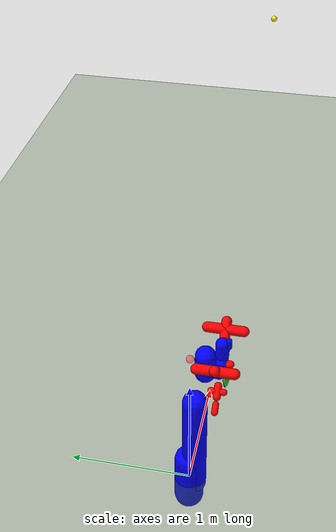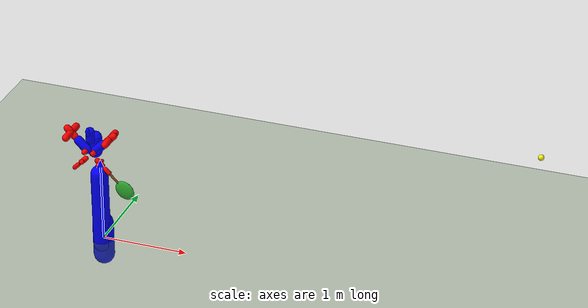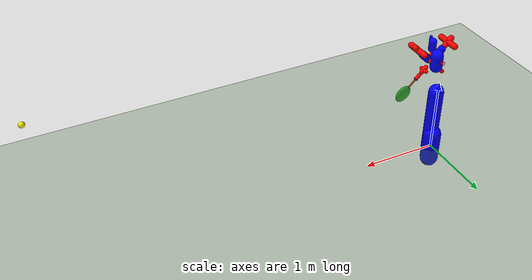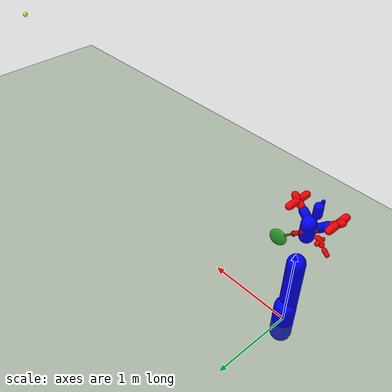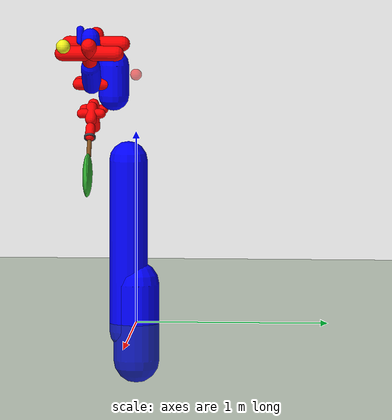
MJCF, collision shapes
<mujoco model="rm65_tennis_robot">
  <option gravity="0 0 -9.81" timestep="0.005" integrator="implicitfast"/>

  <default>
    <default class="body_visual">
      <geom contype="0" conaffinity="0"/>
    </default>
    <default class="arm_visual">
      <geom contype="0" conaffinity="0"/>
    </default>
    <!-- 身体结构碰撞：与地面、右臂碰撞 -->
    <default class="col_body">
      <geom contype="2" conaffinity="5" rgba="0 0 1 0.15" group="1"/>
    </default>
    <!-- 臂段碰撞：与地面、其他臂段碰撞（已排除身体，由 iLQT 代价规避） -->
    <default class="col_arm">
      <geom contype="4" conaffinity="5" rgba="1 0 0 0.15" group="1"/>
    </default>
    <default class="racket">
      <geom contype="8" conaffinity="16"/>
    </default>
    <default class="ball">
      <geom contype="16" conaffinity="10"/>
    </default>
  </default>

  <!-- 排除相邻臂段的碰撞（共享关节的连杆不应碰撞） -->
  <!-- 以及同臂非相邻但总在穿透的 link4-link6 对 -->
  <contact>
    <!-- 排除右臂相邻段碰撞 -->
    <exclude body1="r_base_link1" body2="r_link1"/>
    <exclude body1="r_link1" body2="r_link2"/>
    <exclude body1="r_link2" body2="r_link3"/>
    <exclude body1="r_link3" body2="r_link4"/>
    <exclude body1="r_link4" body2="r_link5"/>
    <exclude body1="r_link5" body2="r_link6"/>
    <exclude body1="r_link4" body2="r_link6"/>
    <!-- 右臂base与link3初始穿透（非相邻但距离很近） -->
    <exclude body1="r_base_link1" body2="r_link3"/>
    <!-- 排除左臂相邻段碰撞 -->
    <exclude body1="l_base_link1" body2="l_link1"/>
    <exclude body1="l_link1" body2="l_link2"/>
    <exclude body1="l_link2" body2="l_link3"/>
    <exclude body1="l_link3" body2="l_link4"/>
    <exclude body1="l_link4" body2="l_link5"/>
    <exclude body1="l_link5" body2="l_link6"/>
    <exclude body1="l_link4" body2="l_link6"/>
    <!-- 左臂base与link3初始穿透 -->
    <exclude body1="l_base_link1" body2="l_link3"/>
    <!-- 排除臂底座与平台的碰撞（紧贴安装） -->
    <exclude body1="r_base_link1" body2="platform_base_link"/>
    <exclude body1="l_base_link1" body2="platform_base_link"/>
    <!-- 排除左右臂底座之间的碰撞（紧贴安装在同一平台） -->
    <exclude body1="r_base_link1" body2="l_base_link1"/>
    <!-- 排除臂link3与平台碰撞（初始姿态下紧贴） -->
    <exclude body1="r_link3" body2="platform_base_link"/>
    <exclude body1="l_link3" body2="platform_base_link"/>
    <!-- 球拍-球弹性碰撞：零阻尼实现完美弹性碰撞 -->
    <pair geom1="r_racket_face" geom2="ball" condim="1" solref="-5000 0" solimp="0.9 0.99 0.001"/>
  </contact>

  <asset>
    <!-- 底盘 & 躯干 -->
    <mesh name="base_link_underpan" file="../../assets/rm_65/urdf/meshes/base_link_underpan.STL"/>
    <mesh name="body_base_link"     file="../../assets/rm_65/urdf/meshes/body_base_link.STL"/>
    <mesh name="platform_base_link" file="../../assets/rm_65/urdf/meshes/platform_base_link.STL"/>
    <!-- 头部 -->
    <mesh name="head_link1" file="../../assets/rm_65/urdf/meshes/head_link1.STL"/>
    <mesh name="head_link2" file="../../assets/rm_65/urdf/meshes/head_link2.STL"/>
    <mesh name="camera_link" file="../../assets/rm_65/urdf/meshes/camera_link.STL"/>
    <!-- 右臂 -->
    <mesh name="r_base_link1" file="../../assets/rm_65/urdf/meshes/r_base_link1.STL"/>
    <mesh name="r_link1"      file="../../assets/rm_65/urdf/meshes/r_link1.STL"/>
    <mesh name="r_link2"      file="../../assets/rm_65/urdf/meshes/r_link2.STL"/>
    <mesh name="r_link3"      file="../../assets/rm_65/urdf/meshes/r_link3.STL"/>
    <mesh name="r_link4"      file="../../assets/rm_65/urdf/meshes/r_link4.STL"/>
    <mesh name="r_link5"      file="../../assets/rm_65/urdf/meshes/r_link5.STL"/>
    <mesh name="r_link6"      file="../../assets/rm_65/urdf/meshes/r_link6.STL"/>
    <!-- 左臂 -->
    <mesh name="l_base_link1" file="../../assets/rm_65/urdf/meshes/l_base_link1.STL"/>
    <mesh name="l_link1"      file="../../assets/rm_65/urdf/meshes/l_link1.STL"/>
    <mesh name="l_link2"      file="../../assets/rm_65/urdf/meshes/l_link2.STL"/>
    <mesh name="l_link3"      file="../../assets/rm_65/urdf/meshes/l_link3.STL"/>
    <mesh name="l_link4"      file="../../assets/rm_65/urdf/meshes/l_link4.STL"/>
    <mesh name="l_link5"      file="../../assets/rm_65/urdf/meshes/l_link5.STL"/>
    <mesh name="l_link6"      file="../../assets/rm_65/urdf/meshes/l_link6.STL"/>
    <!-- 轮子 -->
    <mesh name="link_left_wheel"  file="../../assets/rm_65/urdf/meshes/link_left_wheel.STL"/>
    <mesh name="link_right_wheel" file="../../assets/rm_65/urdf/meshes/link_right_wheel.STL"/>
    <!-- 网球场地板纹理 -->
    <texture name="court_grid" type="2d" builtin="checker" rgb1="0.28 0.42 0.22" rgb2="0.24 0.38 0.20" width="512" height="512" mark="edge" markrgb="0.9 0.95 0.85"/>
    <material name="court_floor" texture="court_grid" texrepeat="8 8" reflectance="0.15" rgba="0.28 0.42 0.22 1"/>
  </asset>

  <worldbody>
    <!-- 天光：正上方强光模拟天空漫射 -->
    <light pos="0 0 8" dir="0 0 -1" diffuse="1.4 1.45 1.55" ambient="0.3 0.3 0.35" specular="0.5 0.5 0.5"/>
    <!-- 主光：右上方暖白 -->
    <light pos="2 -2 3" dir="-0.4 0.3 -0.8" diffuse="1.2 1.15 1.05" specular="0.6 0.6 0.6"/>
    <!-- 补光：左前方冷白 -->
    <light pos="-1.5 -1 2.5" dir="0.3 0.2 -0.7" diffuse="0.8 0.85 0.95"/>
    <!-- 背光：后方轮廓 -->
    <light pos="0 2 2" dir="0 -0.5 -0.6" diffuse="0.5 0.5 0.55"/>

    <!-- 网球场地板（碰撞体） -->
    <geom type="plane" size="25 25 0.1" rgba="0.28 0.42 0.22 1" material="court_floor" contype="1" conaffinity="31"/>
    <!-- 场地白线装饰（不参与碰撞） -->
    <geom type="plane" size="12 0.05 0.001" pos="0 0 0.001" rgba="1 1 1 1" contype="0" conaffinity="0"/>
    <geom type="plane" size="0.05 12 0.001" pos="0 0 0.001" rgba="1 1 1 1" contype="0" conaffinity="0"/>
    <!-- 底线 -->
    <geom type="plane" size="0.05 6 0.001" pos="-6 0 0.001" rgba="1 1 1 1" contype="0" conaffinity="0"/>
    <geom type="plane" size="0.05 6 0.001" pos="6 0 0.001" rgba="1 1 1 1" contype="0" conaffinity="0"/>
    <!-- 发球线 -->
    <geom type="plane" size="0.05 5 0.001" pos="-3 0 0.001" rgba="1 1 1 1" contype="0" conaffinity="0"/>
    <geom type="plane" size="0.05 5 0.001" pos="3 0 0.001" rgba="1 1 1 1" contype="0" conaffinity="0"/>
    <!-- 发球区中线 -->
    <geom type="plane" size="3 0.05 0.001" pos="-4.5 0 0.001" rgba="1 1 1 1" contype="0" conaffinity="0"/>
    <geom type="plane" size="3 0.05 0.001" pos="4.5 0 0.001" rgba="1 1 1 1" contype="0" conaffinity="0"/>
    <!-- 双打边线 -->
    <geom type="plane" size="0.05 12 0.001" pos="0 -5 0.001" rgba="1 1 1 1" contype="0" conaffinity="0"/>
    <geom type="plane" size="0.05 12 0.001" pos="0 5 0.001" rgba="1 1 1 1" contype="0" conaffinity="0"/>

    <!-- ===== 底盘 ===== -->
    <body name="base_link_underpan" pos="0 0 0">
      <inertial pos="-0.013 -0.016 -0.061" mass="2.55" diaginertia="0.066 0.035 0.098"/>
      <geom type="mesh" mesh="base_link_underpan" rgba="0.15 0.15 0.2 1" class="body_visual"/>
      <geom type="mesh" mesh="link_left_wheel" pos="0.148 0.016 -0.153" rgba="0.1 0.1 0.1 1" class="body_visual"/>
      <geom type="mesh" mesh="link_right_wheel" pos="-0.148 0.016 -0.153" rgba="0.1 0.1 0.1 1" class="body_visual"/>
      <!-- 底盘碰撞 -->
      <geom name="col_underpan" type="capsule" fromto="0 0 -0.2 0 0 0.2" size="0.12" class="col_body"/>

      <!-- ===== 躯干柱 ===== -->
      <body name="body_base_link" pos="0 0 0">
        <inertial pos="0 -0.027 0.371" mass="20" diaginertia="0.692 0.688 0.153"/>
        <geom type="mesh" mesh="body_base_link" rgba="0.2 0.2 0.25 1" class="body_visual"/>
        <!-- 躯干碰撞 -->
        <geom name="col_torso" type="capsule" fromto="0 -0.04 -0.05 0 -0.04 0.85" size="0.10" class="col_body"/>

        <!-- ===== 平台（腰部上下已固定） ===== -->
        <body name="platform_base_link" pos="0 -0.11663 1.271">
          <inertial pos="0 -0.053 0.001" mass="5" diaginertia="0.013 0.032 0.022"/>
          <geom type="mesh" mesh="platform_base_link" rgba="0.25 0.25 0.3 1" class="body_visual"/>
          <!-- 平台碰撞 -->
          <geom name="col_platform" type="capsule" fromto="0 0 -0.08 0 0 0.08" size="0.08" class="col_body"/>

          <!-- ===== 头部 ===== -->
          <body name="head_link1" pos="0 -0.102 0.126">
            <geom type="mesh" mesh="head_link1" rgba="0.3 0.3 0.35 1" class="body_visual"/>
            <geom name="col_head1" type="capsule" fromto="0 0 -0.03 0 0 0.03" size="0.025" class="col_body"/>
            <body name="head_link2" pos="0 -0.02 0.044">
              <geom type="mesh" mesh="head_link2" rgba="0.3 0.3 0.35 1" class="body_visual"/>
              <geom name="col_head2" type="capsule" fromto="0 0 -0.05 0 0 0.05" size="0.05" class="col_body"/>
              <body name="camera_link" pos="-0.003 -0.052 0.062">
                <geom type="mesh" mesh="camera_link" rgba="0.2 0.2 0.25 1" class="body_visual"/>
                <geom name="col_camera" type="capsule" fromto="0 0 -0.03 0 0 0.03" size="0.02" class="col_body"/>
              </body>
            </body>
          </body>

          <!-- ===== 右臂（6-DOF 驱动 + 网球拍） ===== -->
          <body name="r_base_link1" pos="-0.1 -0.1103 0.031645" quat="0.92388 0 -0.382683 0">
            <inertial pos="0 0.006 0.025" mass="0.234" diaginertia="0.000274 0.000264 0.000367"/>
            <geom type="mesh" mesh="r_base_link1" rgba="0.85 0.85 0.88 1" class="arm_visual"/>
            <geom name="col_r_base" type="capsule" fromto="0 0 -0.07 0 0 0.07" size="0.05" class="col_body"/>

            <!-- r_joint1: 肩关节偏航 -->
            <body name="r_link1" pos="0 0 0.187">
              <joint name="r_joint1" type="hinge" axis="0 0 1" range="-178 178" damping="2.0" armature="0.2"/>
              <inertial pos="0 0.021 -0.025" mass="0.594" diaginertia="0.00127 0.00118 0.000561"/>
              <geom type="mesh" mesh="r_link1" rgba="0.2 0.6 0.85 1" class="arm_visual"/>
              <geom name="col_r_link1" type="capsule" fromto="0 0 -0.06 0 0 0.06" size="0.04" class="col_arm"/>

              <!-- r_joint2: 肩关节俯仰 -->
              <body name="r_link2" quat="0.5 -0.5 0.5 0.5">
                <joint name="r_joint2" type="hinge" axis="0 0 1" range="-130 130" damping="2.0" armature="0.2"/>
                <inertial pos="0.152 0 -0.006" mass="0.864" diaginertia="0.000633 0.00205 0.00195"/>
                <geom type="mesh" mesh="r_link2" rgba="0.2 0.6 0.85 1" class="arm_visual"/>
                <geom name="col_r_link2" type="capsule" fromto="0 0 -0.14 0 0 0.14" size="0.04" class="col_arm"/>

                <!-- r_joint3: 肘关节 -->
                <body name="r_link3" pos="0.256 0 0" quat="0.707107 0 0 0.707107">
                  <joint name="r_joint3" type="hinge" axis="0 0 1" range="-135 135" damping="1.0" armature="0.1"/>
                  <inertial pos="0 -0.060 0.010" mass="0.290" diaginertia="0.000637 0.000156 0.000614"/>
                  <geom type="mesh" mesh="r_link3" rgba="0.2 0.6 0.85 1" class="arm_visual"/>
                  <geom name="col_r_link3" type="capsule" fromto="0 0 -0.07 0 0 0.07" size="0.03" class="col_arm"/>

                  <!-- r_joint4: 腕关节1 -->
                  <body name="r_link4" pos="0 -0.21 0" quat="0.707107 0.707107 0 0">
                    <joint name="r_joint4" type="hinge" axis="0 0 1" range="-178 178" damping="0.5" armature="0.05"/>
                    <inertial pos="0 -0.018 -0.022" mass="0.239" diaginertia="0.000286 0.000263 0.000120"/>
                    <geom type="mesh" mesh="r_link4" rgba="0.2 0.6 0.85 1" class="arm_visual"/>
                    <geom name="col_r_link4" type="capsule" fromto="0 0 -0.04 0 0 0.04" size="0.03" class="col_arm"/>

                    <!-- r_joint5: 腕关节2 -->
                    <body name="r_link5" quat="0.707107 -0.707107 0 0">
                      <joint name="r_joint5" type="hinge" axis="0 0 1" range="-128 128" damping="0.3" armature="0.03"/>
                      <inertial pos="0 -0.059 0.007" mass="0.219" diaginertia="0.000351 0.000105 0.000334"/>
                      <geom type="mesh" mesh="r_link5" rgba="0.2 0.6 0.85 1" class="arm_visual"/>
                      <geom name="col_r_link5" type="capsule" fromto="0 0 -0.05 0 0 0.05" size="0.025" class="col_arm"/>

                      <!-- r_joint6: 腕关节3（法兰旋转） -->
                      <body name="r_link6" pos="0 -0.112 0" quat="0.707107 0.707107 0 0">
                        <joint name="r_joint6" type="hinge" axis="0 0 1" range="-360 360" damping="0.2" armature="0.02"/>
                        <inertial pos="-0.029 0 0.028" mass="0.221" diaginertia="0.000138 0.000269 0.000353"/>
                        <geom type="mesh" mesh="r_link6" rgba="0.2 0.6 0.85 1" class="arm_visual"/>
                        <geom name="col_r_link6" type="capsule" fromto="0 0 -0.02 0 0 0.04" size="0.025" class="col_arm"/>

                        <!-- ===== 法兰 ===== -->
                        <body name="r_flange" pos="0 0 0.0445">
                          <geom type="cylinder" size="0.03 0.005" rgba="0.3 0.3 0.35 1" class="arm_visual"/>

                          <!-- ===== 网球拍 ===== -->
                          <!-- 手柄从法兰中心沿Z轴引出，拍面与法兰呈90°（面法线沿X） -->
                          <!-- 绕法兰Z轴旋转90°，使拍面法线从X转到Y方向 -->
                          <body name="r_racket_body" pos="0 0 0" quat="0.707107 0 0 0.707107">
                            <inertial pos="0 0 0.13" mass="0.35" diaginertia="0.003 0.001 0.003"/>
                            <geom name="r_racket_handle" type="capsule" fromto="0 0 0.03 0 0 0.22" size="0.012" rgba="0.5 0.3 0.1 1" class="racket"/>
                            <geom name="r_racket_face" type="ellipsoid" pos="0 0 0.25" size="0.025 0.10 0.12" rgba="0.2 0.7 0.2 0.6" class="racket"/>
                            <site name="racket_center" pos="0 0 0.25" size="0.01" rgba="1 0 0 1"/>
                          </body>
                        </body>
                      </body>
                    </body>
                  </body>
                </body>
              </body>
            </body>
          </body>

          <!-- ===== 左臂（不驱动，仅视觉） ===== -->
          <body name="l_base_link1" pos="0.1 -0.1103 0.031645" quat="0 0.382683 0 0.92388">
            <inertial pos="0 0.006 0.025" mass="0.234" diaginertia="0.000274 0.000264 0.000367"/>
            <geom type="mesh" mesh="l_base_link1" rgba="0.85 0.85 0.88 1" class="arm_visual"/>
            <geom name="col_l_base" type="capsule" fromto="0 0 -0.07 0 0 0.07" size="0.05" class="col_body"/>

            <body name="l_link1" pos="0 0 0.187" quat="0 0 0 1">
              <joint name="l_joint1" type="hinge" axis="0 0 1" range="-178 178" damping="2.0" armature="0.2"/>
              <inertial pos="0 0.021 -0.025" mass="0.594" diaginertia="0.00127 0.00118 0.000561"/>
              <geom type="mesh" mesh="l_link1" rgba="0.6 0.6 0.65 1" class="arm_visual"/>
              <geom name="col_l_link1" type="capsule" fromto="0 0 -0.06 0 0 0.06" size="0.04" class="col_arm"/>

              <body name="l_link2" quat="0.5 -0.5 0.5 0.5">
                <joint name="l_joint2" type="hinge" axis="0 0 1" range="-130 130" damping="2.0" armature="0.2"/>
                <inertial pos="0.152 0 -0.006" mass="0.864" diaginertia="0.000633 0.00205 0.00195"/>
                <geom type="mesh" mesh="l_link2" rgba="0.6 0.6 0.65 1" class="arm_visual"/>
                <geom name="col_l_link2" type="capsule" fromto="0 0 -0.14 0 0 0.14" size="0.04" class="col_arm"/>

                <body name="l_link3" pos="0.256 0 0" quat="0.707107 0 0 0.707107">
                  <joint name="l_joint3" type="hinge" axis="0 0 1" range="-135 135" damping="1.0" armature="0.1"/>
                  <inertial pos="0 -0.060 0.010" mass="0.290" diaginertia="0.000637 0.000156 0.000614"/>
                  <geom type="mesh" mesh="l_link3" rgba="0.6 0.6 0.65 1" class="arm_visual"/>
                  <geom name="col_l_link3" type="capsule" fromto="0 0 -0.07 0 0 0.07" size="0.03" class="col_arm"/>

                  <body name="l_link4" pos="0 -0.21 0" quat="0.707107 0.707107 0 0">
                    <joint name="l_joint4" type="hinge" axis="0 0 1" range="-178 178" damping="0.5" armature="0.05"/>
                    <inertial pos="0 -0.018 -0.022" mass="0.239" diaginertia="0.000286 0.000263 0.000120"/>
                    <geom type="mesh" mesh="l_link4" rgba="0.6 0.6 0.65 1" class="arm_visual"/>
                    <geom name="col_l_link4" type="capsule" fromto="0 0 -0.04 0 0 0.04" size="0.03" class="col_arm"/>

                    <body name="l_link5" quat="0.707107 -0.707107 0 0">
                      <joint name="l_joint5" type="hinge" axis="0 0 1" range="-128 128" damping="0.3" armature="0.03"/>
                      <inertial pos="0 -0.059 0.007" mass="0.219" diaginertia="0.000351 0.000105 0.000334"/>
                      <geom type="mesh" mesh="l_link5" rgba="0.6 0.6 0.65 1" class="arm_visual"/>
                      <geom name="col_l_link5" type="capsule" fromto="0 0 -0.05 0 0 0.05" size="0.025" class="col_arm"/>

                      <body name="l_link6" pos="0 -0.115 0" quat="0.707107 0.707107 0 0">
                        <joint name="l_joint6" type="hinge" axis="0 0 1" range="-360 360" damping="0.2" armature="0.02"/>
                        <inertial pos="0.029 0 0.025" mass="0.221" diaginertia="0.000138 0.000269 0.000353"/>
                        <geom type="mesh" mesh="l_link6" rgba="0.6 0.6 0.65 1" class="arm_visual"/>
                        <geom name="col_l_link6" type="capsule" fromto="0 0 -0.02 0 0 0.04" size="0.025" class="col_arm"/>
                      </body>
                    </body>
                  </body>
                </body>
              </body>
            </body>
          </body>

        </body>
      </body>
    </body>

    <!-- ===== 网球 ===== -->
    <body name="ball" pos="5 0 2">
      <freejoint name="ball_freejoint"/>
      <!-- 球跟随灯光：让球在飞行中始终被照亮 -->
      <light pos="0 0 0.5" dir="0 0 -1" diffuse="0.8 0.7 0.4" attenuation="1 0.05 0.01"/>
      <geom name="ball" type="sphere" size="0.033" rgba="0.95 0.95 0.1 1" mass="0.058" class="ball"/>
    </body>

    <!-- 击打目标点标记 -->
    <site name="hit_target" pos="0 0 1.3" size="0.03" rgba="1 0 0 0.5"/>
  </worldbody>

  <actuator>
    <!-- 右臂 6 个力矩执行器 -->
    <motor name="torque_r_joint1" joint="r_joint1" ctrlrange="-60 60"/>
    <motor name="torque_r_joint2" joint="r_joint2" ctrlrange="-60 60"/>
    <motor name="torque_r_joint3" joint="r_joint3" ctrlrange="-30 30"/>
    <motor name="torque_r_joint4" joint="r_joint4" ctrlrange="-10 10"/>
    <motor name="torque_r_joint5" joint="r_joint5" ctrlrange="-10 10"/>
    <motor name="torque_r_joint6" joint="r_joint6" ctrlrange="-10 10"/>
    <!-- 左臂 6 个力矩执行器（用于 PD 保持零位） -->
    <motor name="torque_l_joint1" joint="l_joint1" ctrlrange="-60 60"/>
    <motor name="torque_l_joint2" joint="l_joint2" ctrlrange="-60 60"/>
    <motor name="torque_l_joint3" joint="l_joint3" ctrlrange="-30 30"/>
    <motor name="torque_l_joint4" joint="l_joint4" ctrlrange="-10 10"/>
    <motor name="torque_l_joint5" joint="l_joint5" ctrlrange="-10 10"/>
    <motor name="torque_l_joint6" joint="l_joint6" ctrlrange="-10 10"/>
  </actuator>
</mujoco>
